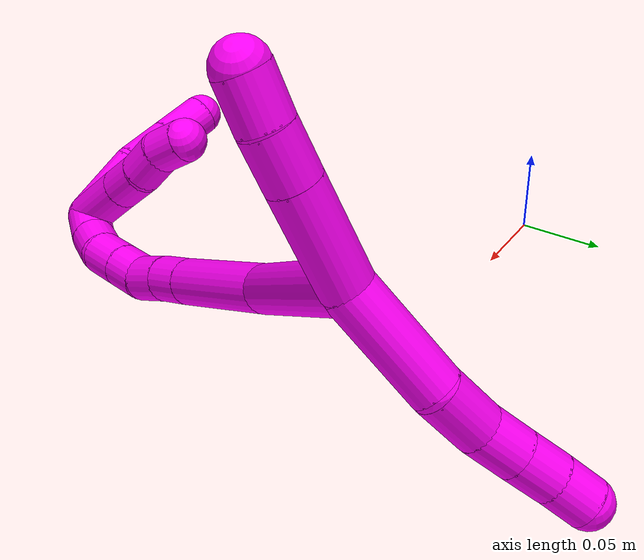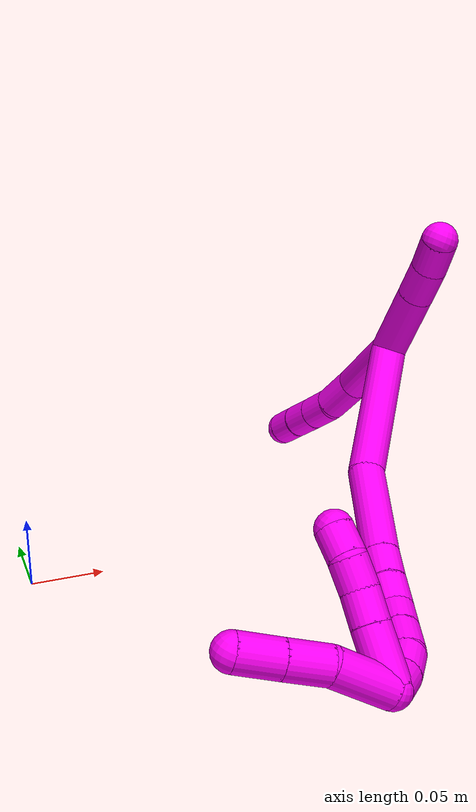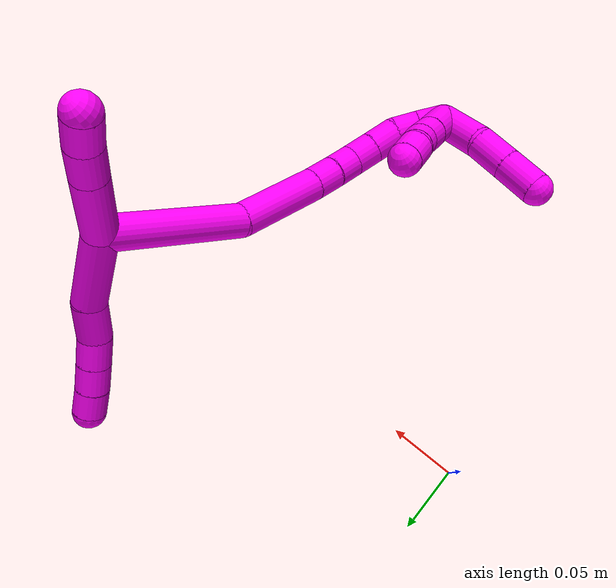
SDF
<sdf version="1.7">
 <world name="default">
  <model name="10">
   <static>0</static>
   <link name="10">
    <collision name="collision-cylinder-e_1_2_8">
     <pose>-0.000149 0.020965 -0.019412 -2.31776 -0.005222 0.011953</pose>
     <geometry><cylinder><radius>0.0125</radius><length>0.057144</length></cylinder></geometry>
     <surface>
      <friction><ode><mu>1.16</mu><mu2>1.16</mu2><slip1>0</slip1><slip2>0</slip2></ode></friction>
      <contact><ode><kp>1e+06</kp><kd>1</kd><max_vel>0</max_vel><min_depth>0.001</min_depth></ode></contact>
     </surface>
    </collision>
    <visual name="visual-cylinder-e_1_2_8">
     <pose>-0.000149 0.020965 -0.019412 -2.31776 -0.005222 0.011953</pose>
     <geometry><cylinder><radius>0.0125</radius><length>0.057144</length></cylinder></geometry>
     <material><ambient>1 0 0.964706 1</ambient></material>
    </visual>
    <collision name="collision-cylinder-e_2_8_9">
     <pose>-0.002855 0.05032 -0.050709 -2.5268 -0.173949 0.536106</pose>
     <geometry><cylinder><radius>0.0125</radius><length>0.029542</length></cylinder></geometry>
     <surface>
      <friction><ode><mu>1.16</mu><mu2>1.16</mu2><slip1>0</slip1><slip2>0</slip2></ode></friction>
      <contact><ode><kp>1e+06</kp><kd>1</kd><max_vel>0</max_vel><min_depth>0.001</min_depth></ode></contact>
     </surface>
    </collision>
    <visual name="visual-cylinder-e_2_8_9">
     <pose>-0.002855 0.05032 -0.050709 -2.5268 -0.173949 0.536106</pose>
     <geometry><cylinder><radius>0.0125</radius><length>0.029542</length></cylinder></geometry>
     <material><ambient>1 0 0.964706 1</ambient></material>
    </visual>
    <collision name="collision-cylinder-e_3_9_10">
     <pose>-0.008068 0.066584 -0.069845 -2.31518 -0.243287 0.543823</pose>
     <geometry><cylinder><radius>0.0125</radius><length>0.022057</length></cylinder></geometry>
     <surface>
      <friction><ode><mu>1.16</mu><mu2>1.16</mu2><slip1>0</slip1><slip2>0</slip2></ode></friction>
      <contact><ode><kp>1e+06</kp><kd>1</kd><max_vel>0</max_vel><min_depth>0.001</min_depth></ode></contact>
     </surface>
    </collision>
    <visual name="visual-cylinder-e_3_9_10">
     <pose>-0.008068 0.066584 -0.069845 -2.31518 -0.243287 0.543823</pose>
     <geometry><cylinder><radius>0.0125</radius><length>0.022057</length></cylinder></geometry>
     <material><ambient>1 0 0.964706 1</ambient></material>
    </visual>
    <collision name="collision-cylinder-e_4_10_11">
     <pose>-0.013343 0.082073 -0.083844 -2.29581 -0.251864 0.548447</pose>
     <geometry><cylinder><radius>0.0125</radius><length>0.021012</length></cylinder></geometry>
     <surface>
      <friction><ode><mu>1.16</mu><mu2>1.16</mu2><slip1>0</slip1><slip2>0</slip2></ode></friction>
      <contact><ode><kp>1e+06</kp><kd>1</kd><max_vel>0</max_vel><min_depth>0.001</min_depth></ode></contact>
     </surface>
    </collision>
    <visual name="visual-cylinder-e_4_10_11">
     <pose>-0.013343 0.082073 -0.083844 -2.29581 -0.251864 0.548447</pose>
     <geometry><cylinder><radius>0.0125</radius><length>0.021012</length></cylinder></geometry>
     <material><ambient>1 0 0.964706 1</ambient></material>
    </visual>
    <collision name="collision-cylinder-e_5_11_6">
     <pose>-0.018064 0.097371 -0.096837 -2.25337 -0.209219 0.434362</pose>
     <geometry><cylinder><radius>0.0125</radius><length>0.020244</length></cylinder></geometry>
     <surface>
      <friction><ode><mu>1.16</mu><mu2>1.16</mu2><slip1>0</slip1><slip2>0</slip2></ode></friction>
      <contact><ode><kp>1e+06</kp><kd>1</kd><max_vel>0</max_vel><min_depth>0.001</min_depth></ode></contact>
     </surface>
    </collision>
    <visual name="visual-cylinder-e_5_11_6">
     <pose>-0.018064 0.097371 -0.096837 -2.25337 -0.209219 0.434362</pose>
     <geometry><cylinder><radius>0.0125</radius><length>0.020244</length></cylinder></geometry>
     <material><ambient>1 0 0.964706 1</ambient></material>
    </visual>
    <collision name="collision-cylinder-e_1_2_12">
     <pose>-0.002986 -0.012115 0.022476 0.494377 -0.116405 -0.029406</pose>
     <geometry><cylinder><radius>0.0125</radius><length>0.051415</length></cylinder></geometry>
     <surface>
      <friction><ode><mu>1.16</mu><mu2>1.16</mu2><slip1>0</slip1><slip2>0</slip2></ode></friction>
      <contact><ode><kp>1e+06</kp><kd>1</kd><max_vel>0</max_vel><min_depth>0.001</min_depth></ode></contact>
     </surface>
    </collision>
    <visual name="visual-cylinder-e_1_2_12">
     <pose>-0.002986 -0.012115 0.022476 0.494377 -0.116405 -0.029406</pose>
     <geometry><cylinder><radius>0.0125</radius><length>0.051415</length></cylinder></geometry>
     <material><ambient>1 0 0.964706 1</ambient></material>
    </visual>
    <collision name="collision-cylinder-e_2_12_13">
     <pose>-0.007553 -0.030227 0.055864 0.502504 -0.126374 -0.032478</pose>
     <geometry><cylinder><radius>0.0125</radius><length>0.025102</length></cylinder></geometry>
     <surface>
      <friction><ode><mu>1.16</mu><mu2>1.16</mu2><slip1>0</slip1><slip2>0</slip2></ode></friction>
      <contact><ode><kp>1e+06</kp><kd>1</kd><max_vel>0</max_vel><min_depth>0.001</min_depth></ode></contact>
     </surface>
    </collision>
    <visual name="visual-cylinder-e_2_12_13">
     <pose>-0.007553 -0.030227 0.055864 0.502504 -0.126374 -0.032478</pose>
     <geometry><cylinder><radius>0.0125</radius><length>0.025102</length></cylinder></geometry>
     <material><ambient>1 0 0.964706 1</ambient></material>
    </visual>
    <collision name="collision-cylinder-e_3_13_5">
     <pose>-0.011629 -0.042306 0.076505 0.55873 -0.214028 -0.061614</pose>
     <geometry><cylinder><radius>0.0125</radius><length>0.023483</length></cylinder></geometry>
     <surface>
      <friction><ode><mu>1.16</mu><mu2>1.16</mu2><slip1>0</slip1><slip2>0</slip2></ode></friction>
      <contact><ode><kp>1e+06</kp><kd>1</kd><max_vel>0</max_vel><min_depth>0.001</min_depth></ode></contact>
     </surface>
    </collision>
    <visual name="visual-cylinder-e_3_13_5">
     <pose>-0.011629 -0.042306 0.076505 0.55873 -0.214028 -0.061614</pose>
     <geometry><cylinder><radius>0.0125</radius><length>0.023483</length></cylinder></geometry>
     <material><ambient>1 0 0.964706 1</ambient></material>
    </visual>
    <collision name="collision-cylinder-e_1_2_14">
     <pose>-0.001801 -0.035921 -0.038127 2.38598 -0.034364 -0.08654</pose>
     <geometry><cylinder><radius>0.0125</radius><length>0.104828</length></cylinder></geometry>
     <surface>
      <friction><ode><mu>1.16</mu><mu2>1.16</mu2><slip1>0</slip1><slip2>0</slip2></ode></friction>
      <contact><ode><kp>1e+06</kp><kd>1</kd><max_vel>0</max_vel><min_depth>0.001</min_depth></ode></contact>
     </surface>
    </collision>
    <visual name="visual-cylinder-e_1_2_14">
     <pose>-0.001801 -0.035921 -0.038127 2.38598 -0.034364 -0.08654</pose>
     <geometry><cylinder><radius>0.0125</radius><length>0.104828</length></cylinder></geometry>
     <material><ambient>1 0 0.964706 1</ambient></material>
    </visual>
    <collision name="collision-cylinder-e_2_14_15">
     <pose>0.001763 -0.100718 -0.094035 2.12273 0.156886 0.279591</pose>
     <geometry><cylinder><radius>0.0125</radius><length>0.068667</length></cylinder></geometry>
     <surface>
      <friction><ode><mu>1.16</mu><mu2>1.16</mu2><slip1>0</slip1><slip2>0</slip2></ode></friction>
      <contact><ode><kp>1e+06</kp><kd>1</kd><max_vel>0</max_vel><min_depth>0.001</min_depth></ode></contact>
     </surface>
    </collision>
    <visual name="visual-cylinder-e_2_14_15">
     <pose>0.001763 -0.100718 -0.094035 2.12273 0.156886 0.279591</pose>
     <geometry><cylinder><radius>0.0125</radius><length>0.068667</length></cylinder></geometry>
     <material><ambient>1 0 0.964706 1</ambient></material>
    </visual>
    <collision name="collision-cylinder-e_3_15_16">
     <pose>0.009 -0.138984 -0.11686 2.06382 0.173954 0.289628</pose>
     <geometry><cylinder><radius>0.0125</radius><length>0.021644</length></cylinder></geometry>
     <surface>
      <friction><ode><mu>1.16</mu><mu2>1.16</mu2><slip1>0</slip1><slip2>0</slip2></ode></friction>
      <contact><ode><kp>1e+06</kp><kd>1</kd><max_vel>0</max_vel><min_depth>0.001</min_depth></ode></contact>
     </surface>
    </collision>
    <visual name="visual-cylinder-e_3_15_16">
     <pose>0.009 -0.138984 -0.11686 2.06382 0.173954 0.289628</pose>
     <geometry><cylinder><radius>0.0125</radius><length>0.021644</length></cylinder></geometry>
     <material><ambient>1 0 0.964706 1</ambient></material>
    </visual>
    <collision name="collision-cylinder-e_4_16_17">
     <pose>0.013362 -0.157405 -0.127188 2.10011 0.233548 0.403493</pose>
     <geometry><cylinder><radius>0.0125</radius><length>0.021511</length></cylinder></geometry>
     <surface>
      <friction><ode><mu>1.16</mu><mu2>1.16</mu2><slip1>0</slip1><slip2>0</slip2></ode></friction>
      <contact><ode><kp>1e+06</kp><kd>1</kd><max_vel>0</max_vel><min_depth>0.001</min_depth></ode></contact>
     </surface>
    </collision>
    <visual name="visual-cylinder-e_4_16_17">
     <pose>0.013362 -0.157405 -0.127188 2.10011 0.233548 0.403493</pose>
     <geometry><cylinder><radius>0.0125</radius><length>0.021511</length></cylinder></geometry>
     <material><ambient>1 0 0.964706 1</ambient></material>
    </visual>
    <collision name="collision-cylinder-e_5_17_18">
     <pose>0.015998 -0.176263 -0.135104 1.83251 0.01442 0.018791</pose>
     <geometry><cylinder><radius>0.0125</radius><length>0.020349</length></cylinder></geometry>
     <surface>
      <friction><ode><mu>1.16</mu><mu2>1.16</mu2><slip1>0</slip1><slip2>0</slip2></ode></friction>
      <contact><ode><kp>1e+06</kp><kd>1</kd><max_vel>0</max_vel><min_depth>0.001</min_depth></ode></contact>
     </surface>
    </collision>
    <visual name="visual-cylinder-e_5_17_18">
     <pose>0.015998 -0.176263 -0.135104 1.83251 0.01442 0.018791</pose>
     <geometry><cylinder><radius>0.0125</radius><length>0.020349</length></cylinder></geometry>
     <material><ambient>1 0 0.964706 1</ambient></material>
    </visual>
    <collision name="collision-cylinder-e_6_18_19">
     <pose>0.0163 -0.196921 -0.140506 1.82114 0.013831 0.017812</pose>
     <geometry><cylinder><radius>0.0125</radius><length>0.02236</length></cylinder></geometry>
     <surface>
      <friction><ode><mu>1.16</mu><mu2>1.16</mu2><slip1>0</slip1><slip2>0</slip2></ode></friction>
      <contact><ode><kp>1e+06</kp><kd>1</kd><max_vel>0</max_vel><min_depth>0.001</min_depth></ode></contact>
     </surface>
    </collision>
    <visual name="visual-cylinder-e_6_18_19">
     <pose>0.0163 -0.196921 -0.140506 1.82114 0.013831 0.017812</pose>
     <geometry><cylinder><radius>0.0125</radius><length>0.02236</length></cylinder></geometry>
     <material><ambient>1 0 0.964706 1</ambient></material>
    </visual>
    <collision name="collision-cylinder-e_7_19_20">
     <pose>0.013569 -0.21696 -0.146673 1.92428 -0.285883 -0.407301</pose>
     <geometry><cylinder><radius>0.0125</radius><length>0.02046</length></cylinder></geometry>
     <surface>
      <friction><ode><mu>1.16</mu><mu2>1.16</mu2><slip1>0</slip1><slip2>0</slip2></ode></friction>
      <contact><ode><kp>1e+06</kp><kd>1</kd><max_vel>0</max_vel><min_depth>0.001</min_depth></ode></contact>
     </surface>
    </collision>
    <visual name="visual-cylinder-e_7_19_20">
     <pose>0.013569 -0.21696 -0.146673 1.92428 -0.285883 -0.407301</pose>
     <geometry><cylinder><radius>0.0125</radius><length>0.02046</length></cylinder></geometry>
     <material><ambient>1 0 0.964706 1</ambient></material>
    </visual>
    <collision name="collision-cylinder-e_8_20_1">
     <pose>0.005866 -0.234885 -0.151687 1.7541 -0.49785 -0.593272</pose>
     <geometry><cylinder><radius>0.0125</radius><length>0.020181</length></cylinder></geometry>
     <surface>
      <friction><ode><mu>1.16</mu><mu2>1.16</mu2><slip1>0</slip1><slip2>0</slip2></ode></friction>
      <contact><ode><kp>1e+06</kp><kd>1</kd><max_vel>0</max_vel><min_depth>0.001</min_depth></ode></contact>
     </surface>
    </collision>
    <visual name="visual-cylinder-e_8_20_1">
     <pose>0.005866 -0.234885 -0.151687 1.7541 -0.49785 -0.593272</pose>
     <geometry><cylinder><radius>0.0125</radius><length>0.020181</length></cylinder></geometry>
     <material><ambient>1 0 0.964706 1</ambient></material>
    </visual>
    <collision name="collision-cylinder-e_1_1_21">
     <pose>-0.008335 -0.232651 -0.14097 -0.72614 -0.517185 0.200312</pose>
     <geometry><cylinder><radius>0.0125</radius><length>0.03795</length></cylinder></geometry>
     <surface>
      <friction><ode><mu>1.16</mu><mu2>1.16</mu2><slip1>0</slip1><slip2>0</slip2></ode></friction>
      <contact><ode><kp>1e+06</kp><kd>1</kd><max_vel>0</max_vel><min_depth>0.001</min_depth></ode></contact>
     </surface>
    </collision>
    <visual name="visual-cylinder-e_1_1_21">
     <pose>-0.008335 -0.232651 -0.14097 -0.72614 -0.517185 0.200312</pose>
     <geometry><cylinder><radius>0.0125</radius><length>0.03795</length></cylinder></geometry>
     <material><ambient>1 0 0.964706 1</ambient></material>
    </visual>
    <collision name="collision-cylinder-e_2_21_22">
     <pose>-0.022721 -0.215245 -0.121549 -0.738696 -0.48112 0.189358</pose>
     <geometry><cylinder><radius>0.0125</radius><length>0.021629</length></cylinder></geometry>
     <surface>
      <friction><ode><mu>1.16</mu><mu2>1.16</mu2><slip1>0</slip1><slip2>0</slip2></ode></friction>
      <contact><ode><kp>1e+06</kp><kd>1</kd><max_vel>0</max_vel><min_depth>0.001</min_depth></ode></contact>
     </surface>
    </collision>
    <visual name="visual-cylinder-e_2_21_22">
     <pose>-0.022721 -0.215245 -0.121549 -0.738696 -0.48112 0.189358</pose>
     <geometry><cylinder><radius>0.0125</radius><length>0.021629</length></cylinder></geometry>
     <material><ambient>1 0 0.964706 1</ambient></material>
    </visual>
    <collision name="collision-cylinder-e_3_22_23">
     <pose>-0.033624 -0.204146 -0.107566 -0.592715 -0.617086 0.194032</pose>
     <geometry><cylinder><radius>0.0125</radius><length>0.020386</length></cylinder></geometry>
     <surface>
      <friction><ode><mu>1.16</mu><mu2>1.16</mu2><slip1>0</slip1><slip2>0</slip2></ode></friction>
      <contact><ode><kp>1e+06</kp><kd>1</kd><max_vel>0</max_vel><min_depth>0.001</min_depth></ode></contact>
     </surface>
    </collision>
    <visual name="visual-cylinder-e_3_22_23">
     <pose>-0.033624 -0.204146 -0.107566 -0.592715 -0.617086 0.194032</pose>
     <geometry><cylinder><radius>0.0125</radius><length>0.020386</length></cylinder></geometry>
     <material><ambient>1 0 0.964706 1</ambient></material>
    </visual>
    <collision name="collision-cylinder-e_4_23_4">
     <pose>-0.044482 -0.192466 -0.095546 -0.941245 -0.517897 0.267917</pose>
     <geometry><cylinder><radius>0.0125</radius><length>0.020036</length></cylinder></geometry>
     <surface>
      <friction><ode><mu>1.16</mu><mu2>1.16</mu2><slip1>0</slip1><slip2>0</slip2></ode></friction>
      <contact><ode><kp>1e+06</kp><kd>1</kd><max_vel>0</max_vel><min_depth>0.001</min_depth></ode></contact>
     </surface>
    </collision>
    <visual name="visual-cylinder-e_4_23_4">
     <pose>-0.044482 -0.192466 -0.095546 -0.941245 -0.517897 0.267917</pose>
     <geometry><cylinder><radius>0.0125</radius><length>0.020036</length></cylinder></geometry>
     <material><ambient>1 0 0.964706 1</ambient></material>
    </visual>
    <collision name="collision-cylinder-e_1_1_24">
     <pose>-0.019777 -0.24503 -0.151337 0.628437 -1.45465 -0.563174</pose>
     <geometry><cylinder><radius>0.0125</radius><length>0.041931</length></cylinder></geometry>
     <surface>
      <friction><ode><mu>1.16</mu><mu2>1.16</mu2><slip1>0</slip1><slip2>0</slip2></ode></friction>
      <contact><ode><kp>1e+06</kp><kd>1</kd><max_vel>0</max_vel><min_depth>0.001</min_depth></ode></contact>
     </surface>
    </collision>
    <visual name="visual-cylinder-e_1_1_24">
     <pose>-0.019777 -0.24503 -0.151337 0.628437 -1.45465 -0.563174</pose>
     <geometry><cylinder><radius>0.0125</radius><length>0.041931</length></cylinder></geometry>
     <material><ambient>1 0 0.964706 1</ambient></material>
    </visual>
    <collision name="collision-cylinder-e_2_24_25">
     <pose>-0.054704 -0.24689 -0.151609 2.9511 -1.41064 -2.91811</pose>
     <geometry><cylinder><radius>0.0125</radius><length>0.028571</length></cylinder></geometry>
     <surface>
      <friction><ode><mu>1.16</mu><mu2>1.16</mu2><slip1>0</slip1><slip2>0</slip2></ode></friction>
      <contact><ode><kp>1e+06</kp><kd>1</kd><max_vel>0</max_vel><min_depth>0.001</min_depth></ode></contact>
     </surface>
    </collision>
    <visual name="visual-cylinder-e_2_24_25">
     <pose>-0.054704 -0.24689 -0.151609 2.9511 -1.41064 -2.91811</pose>
     <geometry><cylinder><radius>0.0125</radius><length>0.028571</length></cylinder></geometry>
     <material><ambient>1 0 0.964706 1</ambient></material>
    </visual>
    <collision name="collision-cylinder-e_3_25_3">
     <pose>-0.083388 -0.247648 -0.156037 2.99358 -1.42003 -2.96951</pose>
     <geometry><cylinder><radius>0.0125</radius><length>0.029498</length></cylinder></geometry>
     <surface>
      <friction><ode><mu>1.16</mu><mu2>1.16</mu2><slip1>0</slip1><slip2>0</slip2></ode></friction>
      <contact><ode><kp>1e+06</kp><kd>1</kd><max_vel>0</max_vel><min_depth>0.001</min_depth></ode></contact>
     </surface>
    </collision>
    <visual name="visual-cylinder-e_3_25_3">
     <pose>-0.083388 -0.247648 -0.156037 2.99358 -1.42003 -2.96951</pose>
     <geometry><cylinder><radius>0.0125</radius><length>0.029498</length></cylinder></geometry>
     <material><ambient>1 0 0.964706 1</ambient></material>
    </visual>
    <collision name="collision-sphere-3">
     <pose>-0.09797 -0.247975 -0.158228 0 -0 0</pose>
     <geometry><sphere><radius>0.0125</radius></sphere></geometry>
     <surface>
      <friction><ode><mu>1.16</mu><mu2>1.16</mu2><slip1>0</slip1><slip2>0</slip2></ode></friction>
      <contact><ode><kp>1e+06</kp><kd>1</kd><max_vel>0</max_vel><min_depth>0.001</min_depth></ode></contact>
     </surface>
    </collision>
    <visual name="visual-sphere-3">
     <pose>-0.09797 -0.247975 -0.158228 0 -0 0</pose>
     <geometry><sphere><radius>0.0125</radius></sphere></geometry>
     <material><ambient>1 0 0.964706 1</ambient></material>
    </visual>
    <collision name="collision-sphere-25">
     <pose>-0.068806 -0.247321 -0.153846 0 -0 0</pose>
     <geometry><sphere><radius>0.0125</radius></sphere></geometry>
     <surface>
      <friction><ode><mu>1.16</mu><mu2>1.16</mu2><slip1>0</slip1><slip2>0</slip2></ode></friction>
      <contact><ode><kp>1e+06</kp><kd>1</kd><max_vel>0</max_vel><min_depth>0.001</min_depth></ode></contact>
     </surface>
    </collision>
    <visual name="visual-sphere-25">
     <pose>-0.068806 -0.247321 -0.153846 0 -0 0</pose>
     <geometry><sphere><radius>0.0125</radius></sphere></geometry>
     <material><ambient>1 0 0.964706 1</ambient></material>
    </visual>
    <collision name="collision-sphere-24">
     <pose>-0.040601 -0.246459 -0.149372 0 -0 0</pose>
     <geometry><sphere><radius>0.0125</radius></sphere></geometry>
     <surface>
      <friction><ode><mu>1.16</mu><mu2>1.16</mu2><slip1>0</slip1><slip2>0</slip2></ode></friction>
      <contact><ode><kp>1e+06</kp><kd>1</kd><max_vel>0</max_vel><min_depth>0.001</min_depth></ode></contact>
     </surface>
    </collision>
    <visual name="visual-sphere-24">
     <pose>-0.040601 -0.246459 -0.149372 0 -0 0</pose>
     <geometry><sphere><radius>0.0125</radius></sphere></geometry>
     <material><ambient>1 0 0.964706 1</ambient></material>
    </visual>
    <collision name="collision-sphere-4">
     <pose>-0.049441 -0.185431 -0.090422 0 -0 0</pose>
     <geometry><sphere><radius>0.0125</radius></sphere></geometry>
     <surface>
      <friction><ode><mu>1.16</mu><mu2>1.16</mu2><slip1>0</slip1><slip2>0</slip2></ode></friction>
      <contact><ode><kp>1e+06</kp><kd>1</kd><max_vel>0</max_vel><min_depth>0.001</min_depth></ode></contact>
     </surface>
    </collision>
    <visual name="visual-sphere-4">
     <pose>-0.049441 -0.185431 -0.090422 0 -0 0</pose>
     <geometry><sphere><radius>0.0125</radius></sphere></geometry>
     <material><ambient>1 0 0.964706 1</ambient></material>
    </visual>
    <collision name="collision-sphere-23">
     <pose>-0.039522 -0.199502 -0.100671 0 -0 0</pose>
     <geometry><sphere><radius>0.0125</radius></sphere></geometry>
     <surface>
      <friction><ode><mu>1.16</mu><mu2>1.16</mu2><slip1>0</slip1><slip2>0</slip2></ode></friction>
      <contact><ode><kp>1e+06</kp><kd>1</kd><max_vel>0</max_vel><min_depth>0.001</min_depth></ode></contact>
     </surface>
    </collision>
    <visual name="visual-sphere-23">
     <pose>-0.039522 -0.199502 -0.100671 0 -0 0</pose>
     <geometry><sphere><radius>0.0125</radius></sphere></geometry>
     <material><ambient>1 0 0.964706 1</ambient></material>
    </visual>
    <collision name="collision-sphere-22">
     <pose>-0.027725 -0.20879 -0.114462 0 -0 0</pose>
     <geometry><sphere><radius>0.0125</radius></sphere></geometry>
     <surface>
      <friction><ode><mu>1.16</mu><mu2>1.16</mu2><slip1>0</slip1><slip2>0</slip2></ode></friction>
      <contact><ode><kp>1e+06</kp><kd>1</kd><max_vel>0</max_vel><min_depth>0.001</min_depth></ode></contact>
     </surface>
    </collision>
    <visual name="visual-sphere-22">
     <pose>-0.027725 -0.20879 -0.114462 0 -0 0</pose>
     <geometry><sphere><radius>0.0125</radius></sphere></geometry>
     <material><ambient>1 0 0.964706 1</ambient></material>
    </visual>
    <collision name="collision-sphere-21">
     <pose>-0.017716 -0.221699 -0.128637 0 -0 0</pose>
     <geometry><sphere><radius>0.0125</radius></sphere></geometry>
     <surface>
      <friction><ode><mu>1.16</mu><mu2>1.16</mu2><slip1>0</slip1><slip2>0</slip2></ode></friction>
      <contact><ode><kp>1e+06</kp><kd>1</kd><max_vel>0</max_vel><min_depth>0.001</min_depth></ode></contact>
     </surface>
    </collision>
    <visual name="visual-sphere-21">
     <pose>-0.017716 -0.221699 -0.128637 0 -0 0</pose>
     <geometry><sphere><radius>0.0125</radius></sphere></geometry>
     <material><ambient>1 0 0.964706 1</ambient></material>
    </visual>
    <collision name="collision-sphere-1">
     <pose>0.001047 -0.243602 -0.153303 0 -0 0</pose>
     <geometry><sphere><radius>0.0125</radius></sphere></geometry>
     <surface>
      <friction><ode><mu>1.16</mu><mu2>1.16</mu2><slip1>0</slip1><slip2>0</slip2></ode></friction>
      <contact><ode><kp>1e+06</kp><kd>1</kd><max_vel>0</max_vel><min_depth>0.001</min_depth></ode></contact>
     </surface>
    </collision>
    <visual name="visual-sphere-1">
     <pose>0.001047 -0.243602 -0.153303 0 -0 0</pose>
     <geometry><sphere><radius>0.0125</radius></sphere></geometry>
     <material><ambient>1 0 0.964706 1</ambient></material>
    </visual>
    <collision name="collision-sphere-6">
     <pose>-0.020166 0.105054 -0.103083 0 -0 0</pose>
     <geometry><sphere><radius>0.0125</radius></sphere></geometry>
     <surface>
      <friction><ode><mu>1.16</mu><mu2>1.16</mu2><slip1>0</slip1><slip2>0</slip2></ode></friction>
      <contact><ode><kp>1e+06</kp><kd>1</kd><max_vel>0</max_vel><min_depth>0.001</min_depth></ode></contact>
     </surface>
    </collision>
    <visual name="visual-sphere-6">
     <pose>-0.020166 0.105054 -0.103083 0 -0 0</pose>
     <geometry><sphere><radius>0.0125</radius></sphere></geometry>
     <material><ambient>1 0 0.964706 1</ambient></material>
    </visual>
    <collision name="collision-sphere-11">
     <pose>-0.015961 0.089688 -0.090591 0 -0 0</pose>
     <geometry><sphere><radius>0.0125</radius></sphere></geometry>
     <surface>
      <friction><ode><mu>1.16</mu><mu2>1.16</mu2><slip1>0</slip1><slip2>0</slip2></ode></friction>
      <contact><ode><kp>1e+06</kp><kd>1</kd><max_vel>0</max_vel><min_depth>0.001</min_depth></ode></contact>
     </surface>
    </collision>
    <visual name="visual-sphere-11">
     <pose>-0.015961 0.089688 -0.090591 0 -0 0</pose>
     <geometry><sphere><radius>0.0125</radius></sphere></geometry>
     <material><ambient>1 0 0.964706 1</ambient></material>
    </visual>
    <collision name="collision-sphere-10">
     <pose>-0.010725 0.074457 -0.077097 0 -0 0</pose>
     <geometry><sphere><radius>0.0125</radius></sphere></geometry>
     <surface>
      <friction><ode><mu>1.16</mu><mu2>1.16</mu2><slip1>0</slip1><slip2>0</slip2></ode></friction>
      <contact><ode><kp>1e+06</kp><kd>1</kd><max_vel>0</max_vel><min_depth>0.001</min_depth></ode></contact>
     </surface>
    </collision>
    <visual name="visual-sphere-10">
     <pose>-0.010725 0.074457 -0.077097 0 -0 0</pose>
     <geometry><sphere><radius>0.0125</radius></sphere></geometry>
     <material><ambient>1 0 0.964706 1</ambient></material>
    </visual>
    <collision name="collision-sphere-9">
     <pose>-0.005411 0.058712 -0.062593 0 -0 0</pose>
     <geometry><sphere><radius>0.0125</radius></sphere></geometry>
     <surface>
      <friction><ode><mu>1.16</mu><mu2>1.16</mu2><slip1>0</slip1><slip2>0</slip2></ode></friction>
      <contact><ode><kp>1e+06</kp><kd>1</kd><max_vel>0</max_vel><min_depth>0.001</min_depth></ode></contact>
     </surface>
    </collision>
    <visual name="visual-sphere-9">
     <pose>-0.005411 0.058712 -0.062593 0 -0 0</pose>
     <geometry><sphere><radius>0.0125</radius></sphere></geometry>
     <material><ambient>1 0 0.964706 1</ambient></material>
    </visual>
    <collision name="collision-sphere-2">
     <geometry><sphere><radius>0.0125</radius></sphere></geometry>
     <surface>
      <friction><ode><mu>1.16</mu><mu2>1.16</mu2><slip1>0</slip1><slip2>0</slip2></ode></friction>
      <contact><ode><kp>1e+06</kp><kd>1</kd><max_vel>0</max_vel><min_depth>0.001</min_depth></ode></contact>
     </surface>
    </collision>
    <visual name="visual-sphere-2">
     <geometry><sphere><radius>0.0125</radius></sphere></geometry>
     <material><ambient>1 0 0.964706 1</ambient></material>
    </visual>
    <collision name="collision-sphere-19">
     <pose>0.016454 -0.207752 -0.143275 0 -0 0</pose>
     <geometry><sphere><radius>0.0125</radius></sphere></geometry>
     <surface>
      <friction><ode><mu>1.16</mu><mu2>1.16</mu2><slip1>0</slip1><slip2>0</slip2></ode></friction>
      <contact><ode><kp>1e+06</kp><kd>1</kd><max_vel>0</max_vel><min_depth>0.001</min_depth></ode></contact>
     </surface>
    </collision>
    <visual name="visual-sphere-19">
     <pose>0.016454 -0.207752 -0.143275 0 -0 0</pose>
     <geometry><sphere><radius>0.0125</radius></sphere></geometry>
     <material><ambient>1 0 0.964706 1</ambient></material>
    </visual>
    <collision name="collision-sphere-8">
     <pose>-0.000298 0.041929 -0.038824 0 -0 0</pose>
     <geometry><sphere><radius>0.0125</radius></sphere></geometry>
     <surface>
      <friction><ode><mu>1.16</mu><mu2>1.16</mu2><slip1>0</slip1><slip2>0</slip2></ode></friction>
      <contact><ode><kp>1e+06</kp><kd>1</kd><max_vel>0</max_vel><min_depth>0.001</min_depth></ode></contact>
     </surface>
    </collision>
    <visual name="visual-sphere-8">
     <pose>-0.000298 0.041929 -0.038824 0 -0 0</pose>
     <geometry><sphere><radius>0.0125</radius></sphere></geometry>
     <material><ambient>1 0 0.964706 1</ambient></material>
    </visual>
    <collision name="collision-sphere-12">
     <pose>-0.005971 -0.02423 0.044952 0 -0 0</pose>
     <geometry><sphere><radius>0.0125</radius></sphere></geometry>
     <surface>
      <friction><ode><mu>1.16</mu><mu2>1.16</mu2><slip1>0</slip1><slip2>0</slip2></ode></friction>
      <contact><ode><kp>1e+06</kp><kd>1</kd><max_vel>0</max_vel><min_depth>0.001</min_depth></ode></contact>
     </surface>
    </collision>
    <visual name="visual-sphere-12">
     <pose>-0.005971 -0.02423 0.044952 0 -0 0</pose>
     <geometry><sphere><radius>0.0125</radius></sphere></geometry>
     <material><ambient>1 0 0.964706 1</ambient></material>
    </visual>
    <collision name="collision-sphere-13">
     <pose>-0.009135 -0.036224 0.066776 0 -0 0</pose>
     <geometry><sphere><radius>0.0125</radius></sphere></geometry>
     <surface>
      <friction><ode><mu>1.16</mu><mu2>1.16</mu2><slip1>0</slip1><slip2>0</slip2></ode></friction>
      <contact><ode><kp>1e+06</kp><kd>1</kd><max_vel>0</max_vel><min_depth>0.001</min_depth></ode></contact>
     </surface>
    </collision>
    <visual name="visual-sphere-13">
     <pose>-0.009135 -0.036224 0.066776 0 -0 0</pose>
     <geometry><sphere><radius>0.0125</radius></sphere></geometry>
     <material><ambient>1 0 0.964706 1</ambient></material>
    </visual>
    <collision name="collision-sphere-5">
     <pose>-0.014123 -0.048388 0.086234 0 -0 0</pose>
     <geometry><sphere><radius>0.0125</radius></sphere></geometry>
     <surface>
      <friction><ode><mu>1.16</mu><mu2>1.16</mu2><slip1>0</slip1><slip2>0</slip2></ode></friction>
      <contact><ode><kp>1e+06</kp><kd>1</kd><max_vel>0</max_vel><min_depth>0.001</min_depth></ode></contact>
     </surface>
    </collision>
    <visual name="visual-sphere-5">
     <pose>-0.014123 -0.048388 0.086234 0 -0 0</pose>
     <geometry><sphere><radius>0.0125</radius></sphere></geometry>
     <material><ambient>1 0 0.964706 1</ambient></material>
    </visual>
    <collision name="collision-sphere-14">
     <pose>-0.003602 -0.071842 -0.076254 0 -0 0</pose>
     <geometry><sphere><radius>0.0125</radius></sphere></geometry>
     <surface>
      <friction><ode><mu>1.16</mu><mu2>1.16</mu2><slip1>0</slip1><slip2>0</slip2></ode></friction>
      <contact><ode><kp>1e+06</kp><kd>1</kd><max_vel>0</max_vel><min_depth>0.001</min_depth></ode></contact>
     </surface>
    </collision>
    <visual name="visual-sphere-14">
     <pose>-0.003602 -0.071842 -0.076254 0 -0 0</pose>
     <geometry><sphere><radius>0.0125</radius></sphere></geometry>
     <material><ambient>1 0 0.964706 1</ambient></material>
    </visual>
    <collision name="collision-sphere-15">
     <pose>0.007127 -0.129594 -0.111816 0 -0 0</pose>
     <geometry><sphere><radius>0.0125</radius></sphere></geometry>
     <surface>
      <friction><ode><mu>1.16</mu><mu2>1.16</mu2><slip1>0</slip1><slip2>0</slip2></ode></friction>
      <contact><ode><kp>1e+06</kp><kd>1</kd><max_vel>0</max_vel><min_depth>0.001</min_depth></ode></contact>
     </surface>
    </collision>
    <visual name="visual-sphere-15">
     <pose>0.007127 -0.129594 -0.111816 0 -0 0</pose>
     <geometry><sphere><radius>0.0125</radius></sphere></geometry>
     <material><ambient>1 0 0.964706 1</ambient></material>
    </visual>
    <collision name="collision-sphere-16">
     <pose>0.010873 -0.148373 -0.121905 0 -0 0</pose>
     <geometry><sphere><radius>0.0125</radius></sphere></geometry>
     <surface>
      <friction><ode><mu>1.16</mu><mu2>1.16</mu2><slip1>0</slip1><slip2>0</slip2></ode></friction>
      <contact><ode><kp>1e+06</kp><kd>1</kd><max_vel>0</max_vel><min_depth>0.001</min_depth></ode></contact>
     </surface>
    </collision>
    <visual name="visual-sphere-16">
     <pose>0.010873 -0.148373 -0.121905 0 -0 0</pose>
     <geometry><sphere><radius>0.0125</radius></sphere></geometry>
     <material><ambient>1 0 0.964706 1</ambient></material>
    </visual>
    <collision name="collision-sphere-17">
     <pose>0.015852 -0.166436 -0.132472 0 -0 0</pose>
     <geometry><sphere><radius>0.0125</radius></sphere></geometry>
     <surface>
      <friction><ode><mu>1.16</mu><mu2>1.16</mu2><slip1>0</slip1><slip2>0</slip2></ode></friction>
      <contact><ode><kp>1e+06</kp><kd>1</kd><max_vel>0</max_vel><min_depth>0.001</min_depth></ode></contact>
     </surface>
    </collision>
    <visual name="visual-sphere-17">
     <pose>0.015852 -0.166436 -0.132472 0 -0 0</pose>
     <geometry><sphere><radius>0.0125</radius></sphere></geometry>
     <material><ambient>1 0 0.964706 1</ambient></material>
    </visual>
    <collision name="collision-sphere-18">
     <pose>0.016145 -0.186091 -0.137736 0 -0 0</pose>
     <geometry><sphere><radius>0.0125</radius></sphere></geometry>
     <surface>
      <friction><ode><mu>1.16</mu><mu2>1.16</mu2><slip1>0</slip1><slip2>0</slip2></ode></friction>
      <contact><ode><kp>1e+06</kp><kd>1</kd><max_vel>0</max_vel><min_depth>0.001</min_depth></ode></contact>
     </surface>
    </collision>
    <visual name="visual-sphere-18">
     <pose>0.016145 -0.186091 -0.137736 0 -0 0</pose>
     <geometry><sphere><radius>0.0125</radius></sphere></geometry>
     <material><ambient>1 0 0.964706 1</ambient></material>
    </visual>
    <collision name="collision-sphere-20">
     <pose>0.010684 -0.226168 -0.15007 0 -0 0</pose>
     <geometry><sphere><radius>0.0125</radius></sphere></geometry>
     <surface>
      <friction><ode><mu>1.16</mu><mu2>1.16</mu2><slip1>0</slip1><slip2>0</slip2></ode></friction>
      <contact><ode><kp>1e+06</kp><kd>1</kd><max_vel>0</max_vel><min_depth>0.001</min_depth></ode></contact>
     </surface>
    </collision>
    <visual name="visual-sphere-20">
     <pose>0.010684 -0.226168 -0.15007 0 -0 0</pose>
     <geometry><sphere><radius>0.0125</radius></sphere></geometry>
     <material><ambient>1 0 0.964706 1</ambient></material>
    </visual>
    <inertial>
     <pose>-0.009692 -0.099876 -0.078072 0 -0 0</pose>
     <mass>0.75</mass>
     <inertia>
      <ixx>0.000177</ixx>
      <ixy>0</ixy>
      <ixz>0</ixz>
      <iyy>-7.3e-05</iyy>
      <iyz>0</iyz>
      <izz>0.000101</izz>
     </inertia>
    </inertial>
   </link>
   <pose>0.276855 0.035721 0.123242 -0.188229 0.40277 -0.253993</pose>
  </model>
 </world>
</sdf>
